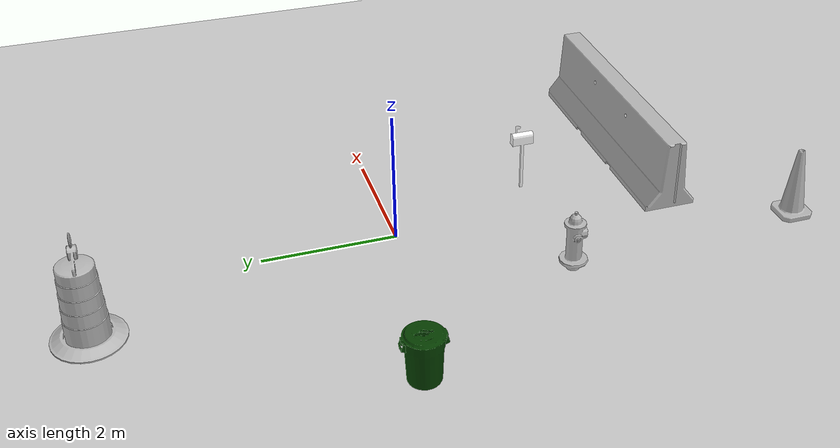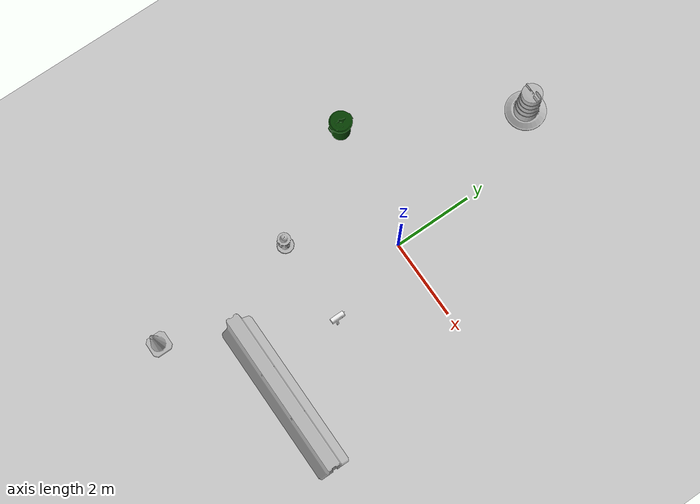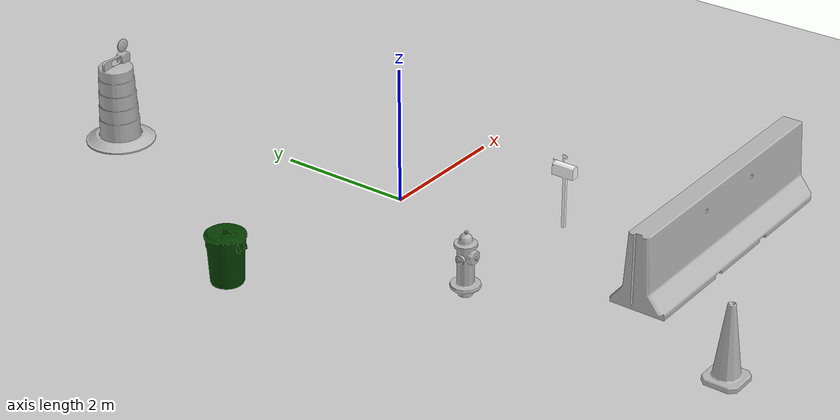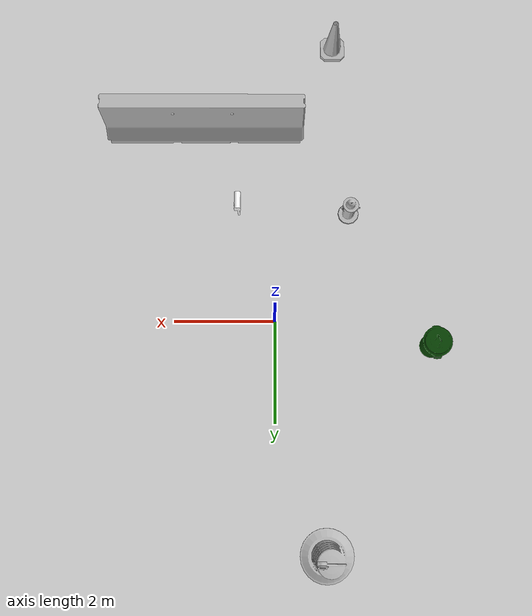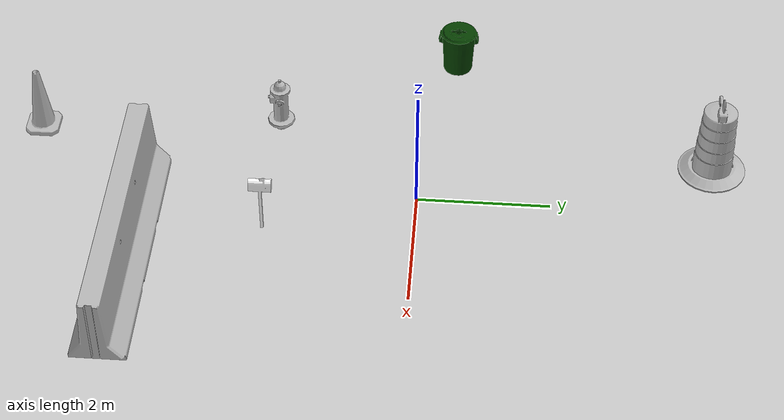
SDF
<sdf version="1.7">
 <world name="default">
  <light name="sun" type="directional">
   <pose>0 0 10 0 -0 0</pose>
   <diffuse>0.8 0.8 0.8 1</diffuse>
   <specular>0.2 0.2 0.2 1</specular>
   <attenuation>
    <range>1000</range>
    <constant>0.9</constant>
    <linear>0.01</linear>
    <quadratic>0.001</quadratic>
   </attenuation>
   <direction>-0.5 0.1 -0.9</direction>
   <spot><inner_angle>0</inner_angle><outer_angle>0</outer_angle><falloff>0</falloff></spot>
  </light>
  <model name="ground_plane">
   <static>1</static>
   <link name="link">
    <collision name="collision">
     <geometry><plane><normal>0 0 1</normal><size>100 100</size></plane></geometry>
     <surface><friction><ode><mu>100</mu><mu2>50</mu2></ode></friction></surface>
    </collision>
    <visual name="visual">
     <cast_shadows>0</cast_shadows>
     <geometry><plane><normal>0 0 1</normal><size>100 100</size></plane></geometry>
     <material>
      <script><uri>file://media/materials/scripts/gazebo.material</uri><name>Gazebo/Grey</name></script>
     </material>
    </visual>
   </link>
  </model>
  <gravity>0 0 -9.8</gravity>
  <magnetic_field>6e-06 2.3e-05 -4.2e-05</magnetic_field>
  <atmosphere type="adiabatic"/>
  <physics type="ode">
   <max_step_size>0.001</max_step_size>
   <real_time_factor>1</real_time_factor>
   <real_time_update_rate>1000</real_time_update_rate>
  </physics>
  <scene><ambient>0.4 0.4 0.4 1</ambient><background>0.7 0.7 0.7 1</background><shadows>1</shadows></scene>
  <spherical_coordinates>
   <surface_model>EARTH_WGS84</surface_model>
   <latitude_deg>0</latitude_deg>
   <longitude_deg>0</longitude_deg>
   <elevation>0</elevation>
   <heading_deg>0</heading_deg>
  </spherical_coordinates>
  <model name="fire_hydrant">
   <static>1</static>
   <link name="link">
    <collision name="collision">
     <geometry><mesh><uri>model://fire_hydrant/meshes/fire_hydrant.dae</uri></mesh></geometry>
    </collision>
    <visual name="visual">
     <geometry><mesh><uri>model://fire_hydrant/meshes/fire_hydrant.dae</uri></mesh></geometry>
    </visual>
   </link>
   <pose>-1.48642 -2.1941 0 0 -0 0</pose>
  </model>
  <model name="first_2015_trash_can">
   <link name="link">
    <inertial>
     <pose>0 0 0.3683 0 -0 0</pose>
     <mass>4.83076</mass>
     <inertia>
      <ixx>0.281534</ixx>
      <ixy>0</ixy>
      <ixz>0</ixz>
      <iyy>0.281534</iyy>
      <iyz>0</iyz>
      <izz>0.126223</izz>
     </inertia>
    </inertial>
    <visual name="visual">
     <geometry><mesh><uri>model://first_2015_trash_can/meshes/trash_can.dae</uri></mesh></geometry>
    </visual>
    <collision name="collision">
     <geometry><mesh><uri>model://first_2015_trash_can/meshes/trash_can.dae</uri></mesh></geometry>
    </collision>
   </link>
   <pose>-3.07829 0.484534 -1e-06 1e-05 1.5e-05 -0.000922</pose>
  </model>
  <model name="Mailbox">
   <link name="link">
    <collision name="collision">
     <geometry><mesh><uri>model://mailbox/meshes/mailbox.dae</uri></mesh></geometry>
    </collision>
    <visual name="visual">
     <geometry><mesh><uri>model://mailbox/meshes/mailbox.dae</uri></mesh></geometry>
     <material>
      <script>
       <uri>model://mailbox/materials/scripts</uri>
       <uri>model://mailbox/materials/textures</uri>
       <name>Mailbox/Diffuse</name>
      </script>
     </material>
    </visual>
    <inertial>
     <inertia><ixx>1</ixx><ixy>0</ixy><ixz>0</ixz><iyy>1</iyy><iyz>0</iyz><izz>1</izz></inertia>
     <mass>1</mass>
    </inertial>
   </link>
   <pose>0.729562 -2.23924 -1e-05 0 -6e-06 0</pose>
  </model>
  <model name="Construction Barrel">
   <link name="link">
    <inertial>
     <pose>0 0 0.4 0 -0 0</pose>
     <mass>500</mass>
     <inertia><ixx>51.2096</ixx><iyy>51.2096</iyy><izz>25</izz><ixy>0</ixy><ixz>0</ixz><iyz>0</iyz></inertia>
    </inertial>
    <collision name="collision">
     <geometry><mesh><uri>model://construction_barrel/meshes/construction_barrel.dae</uri></mesh></geometry>
    </collision>
    <visual name="visual">
     <geometry><mesh><uri>model://construction_barrel/meshes/construction_barrel.dae</uri></mesh></geometry>
    </visual>
   </link>
   <pose>-0.977236 4.44023 1e-06 2e-06 3e-06 -6e-06</pose>
  </model>
  <model name="Construction Cone">
   <link name="link">
    <collision name="collision">
     <geometry>
      <mesh><scale>10 10 10</scale><uri>model://construction_cone/meshes/construction_cone.dae</uri></mesh>
     </geometry>
    </collision>
    <visual name="visual">
     <geometry>
      <mesh><scale>10 10 10</scale><uri>model://construction_cone/meshes/construction_cone.dae</uri></mesh>
     </geometry>
    </visual>
    <inertial>
     <inertia><ixx>1</ixx><ixy>0</ixy><ixz>0</ixz><iyy>1</iyy><iyz>0</iyz><izz>1</izz></inertia>
     <mass>1</mass>
    </inertial>
   </link>
   <pose>-1.22612 -5.89698 -0 0 -0 0</pose>
  </model>
  <model name="jersey_barrier">
   <static>1</static>
   <link name="link">
    <visual name="visual">
     <geometry><mesh><uri>model://jersey_barrier/meshes/jersey_barrier.dae</uri></mesh></geometry>
    </visual>
    <collision name="upright">
     <pose>0 0 0.5715 0 -0 0</pose>
     <geometry><box><size>4.06542 0.3063 1.143</size></box></geometry>
    </collision>
    <collision name="base">
     <pose>0 0 0.032258 0 -0 0</pose>
     <geometry><box><size>4.06542 0.8107 0.064516</size></box></geometry>
    </collision>
    <collision name="base2">
     <pose>0 0 0.1 0 -0 0</pose>
     <geometry><box><size>4.06542 0.65 0.1</size></box></geometry>
    </collision>
    <collision name="base3">
     <pose>0 0 0.2 0 -0 0</pose>
     <geometry><box><size>4.06542 0.5 0.1</size></box></geometry>
    </collision>
    <collision name="left-angle">
     <pose>0 -0.224 0.2401 0.9 -0 0</pose>
     <geometry><box><size>4.06542 0.5 0.064516</size></box></geometry>
    </collision>
    <collision name="right-angle">
     <pose>0 0.224 0.2401 -0.9 0 0</pose>
     <geometry><box><size>4.06542 0.5 0.064516</size></box></geometry>
    </collision>
   </link>
   <pose>1.43732 -4.19566 0 0 -0 0</pose>
  </model>
 </world>
</sdf>
